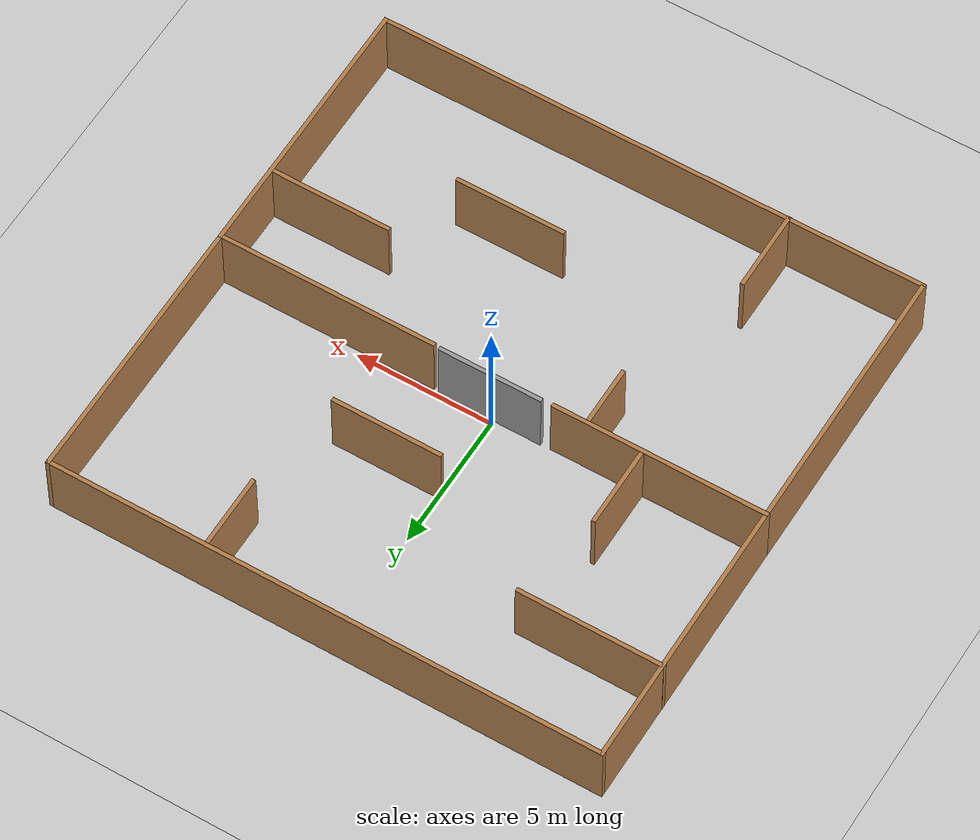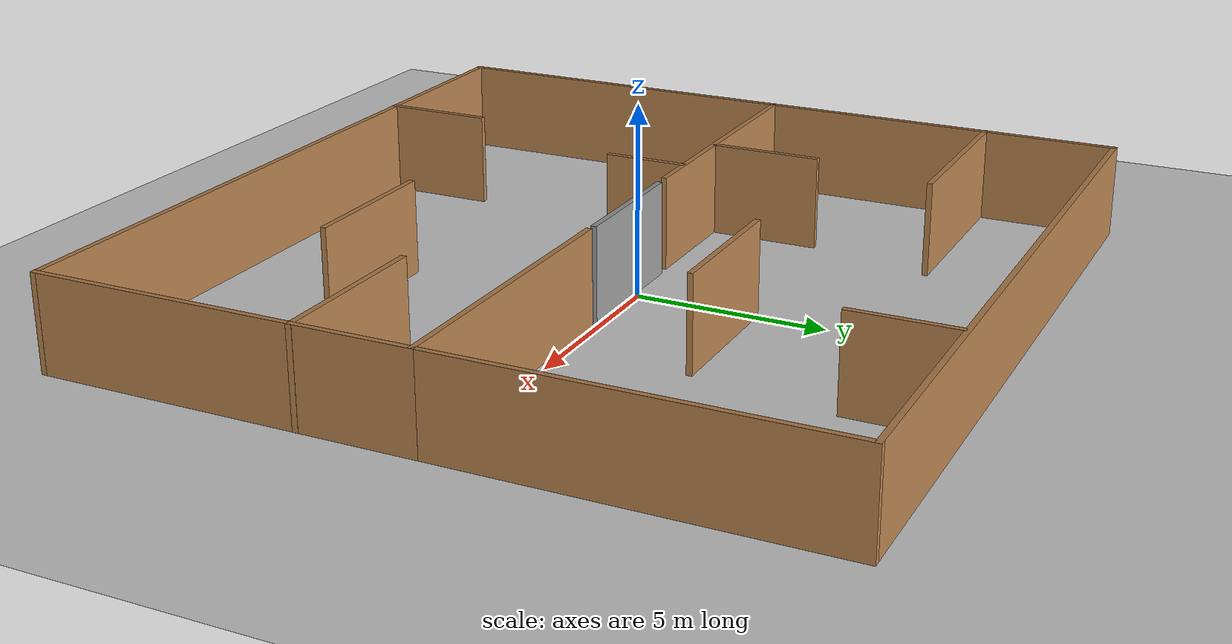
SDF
<sdf version="1.6">
 <world name="default">
  <light name="sun" type="directional">
   <pose>0 0 10 0 -0 0</pose>
   <diffuse>0.8 0.8 0.8 1</diffuse>
   <specular>0.2 0.2 0.2 1</specular>
   <attenuation>
    <range>1000</range>
    <constant>0.9</constant>
    <linear>0.01</linear>
    <quadratic>0.001</quadratic>
   </attenuation>
   <direction>-0.5 0.1 -0.9</direction>
  </light>
  <model name="ground_plane">
   <static>1</static>
   <link name="link">
    <collision name="collision">
     <geometry><plane><normal>0 0 1</normal><size>100 100</size></plane></geometry>
     <surface>
      <contact><collide_bitmask>65535</collide_bitmask></contact>
      <friction><ode><mu>100</mu><mu2>50</mu2></ode></friction>
     </surface>
    </collision>
    <visual name="visual">
     <cast_shadows>0</cast_shadows>
     <geometry><plane><normal>0 0 1</normal><size>100 100</size></plane></geometry>
     <material>
      <script><uri>file://media/materials/scripts/gazebo.material</uri><name>Gazebo/Grey</name></script>
     </material>
    </visual>
   </link>
  </model>
  <gravity>0 0 -9.8</gravity>
  <magnetic_field>6e-06 2.3e-05 -4.2e-05</magnetic_field>
  <atmosphere type="adiabatic"/>
  <physics name="default_physics" default="0" type="ode">
   <max_step_size>0.001</max_step_size>
   <real_time_factor>1</real_time_factor>
   <real_time_update_rate>1000</real_time_update_rate>
  </physics>
  <scene><ambient>0.4 0.4 0.4 1</ambient><background>0.7 0.7 0.7 1</background><shadows>1</shadows></scene>
  <audio><device>default</device></audio>
  <spherical_coordinates>
   <surface_model>EARTH_WGS84</surface_model>
   <latitude_deg>0</latitude_deg>
   <longitude_deg>0</longitude_deg>
   <elevation>0</elevation>
   <heading_deg>0</heading_deg>
  </spherical_coordinates>
  <model name="2rooms">
   <pose>0.20375 -0.24591 0 0 -0 0</pose>
   <link name="Wall_101">
    <collision name="Wall_101_Collision">
     <geometry><box><size>4 0.15 2.5</size></box></geometry>
     <pose>0 0 1.25 0 -0 0</pose>
    </collision>
    <visual name="Wall_101_Visual">
     <pose>0 0 1.25 0 -0 0</pose>
     <geometry><box><size>4 0.15 2.5</size></box></geometry>
     <material>
      <script><uri>file://media/materials/scripts/gazebo.material</uri><name>Gazebo/Wood</name></script>
      <ambient>1 1 1 1</ambient>
     </material>
     <meta><layer>0</layer></meta>
    </visual>
    <pose>1.68226 3.37271 0 0 -0 0</pose>
   </link>
   <link name="Wall_103">
    <collision name="Wall_103_Collision">
     <geometry><box><size>2.75 0.15 2.5</size></box></geometry>
     <pose>0 0 1.25 0 -0 0</pose>
    </collision>
    <visual name="Wall_103_Visual">
     <pose>0 0 1.25 0 -0 0</pose>
     <geometry><box><size>2.75 0.15 2.5</size></box></geometry>
     <material>
      <script><uri>file://media/materials/scripts/gazebo.material</uri><name>Gazebo/Wood</name></script>
      <ambient>1 1 1 1</ambient>
     </material>
     <meta><layer>0</layer></meta>
    </visual>
    <pose>4.17121 8.49301 0 0 -0 -1.5708</pose>
   </link>
   <link name="Wall_105">
    <collision name="Wall_105_Collision">
     <geometry><box><size>5.25 0.15 2.5</size></box></geometry>
     <pose>0 0 1.25 0 -0 0</pose>
    </collision>
    <visual name="Wall_105_Visual">
     <pose>0 0 1.25 0 -0 0</pose>
     <geometry><box><size>5.25 0.15 2.5</size></box></geometry>
     <material>
      <script><uri>file://media/materials/scripts/gazebo.material</uri><name>Gazebo/Wood</name></script>
      <ambient>1 1 1 1</ambient>
     </material>
     <meta><layer>0</layer></meta>
    </visual>
    <pose>-7.38061 6.29415 0 0 -0 0</pose>
   </link>
   <link name="Wall_107">
    <collision name="Wall_107_Collision">
     <geometry><box><size>3 0.15 2.5</size></box></geometry>
     <pose>0 0 1.25 0 -0 0</pose>
    </collision>
    <visual name="Wall_107_Visual">
     <pose>0 0 1.25 0 -0 0</pose>
     <geometry><box><size>3 0.15 2.5</size></box></geometry>
     <material>
      <script><uri>file://media/materials/scripts/gazebo.material</uri><name>Gazebo/Wood</name></script>
      <ambient>1 1 1 1</ambient>
     </material>
     <meta><layer>0</layer></meta>
    </visual>
    <pose>-5.52432 1.50013 0 0 -0 1.5708</pose>
   </link>
   <link name="Wall_110">
    <collision name="Wall_110_Collision">
     <geometry><box><size>7.75 0.15 2.5</size></box></geometry>
     <pose>0 0 1.25 0 -0 0</pose>
    </collision>
    <visual name="Wall_110_Visual">
     <pose>0 0 1.25 0 -0 0</pose>
     <geometry><box><size>7.75 0.15 2.5</size></box></geometry>
     <material>
      <script><uri>file://media/materials/scripts/gazebo.material</uri><name>Gazebo/Wood</name></script>
      <ambient>1 1 1 1</ambient>
     </material>
     <meta><layer>0</layer></meta>
    </visual>
    <pose>-6.12313 0.009005 0 0 -0 0</pose>
   </link>
   <link name="Wall_112">
    <collision name="Wall_112_Collision">
     <geometry><box><size>8 0.15 2.5</size></box></geometry>
     <pose>0 0 1.25 0 -0 0</pose>
    </collision>
    <visual name="Wall_112_Visual">
     <pose>0 0 1.25 0 -0 0</pose>
     <geometry><box><size>8 0.15 2.5</size></box></geometry>
     <material>
      <script><uri>file://media/materials/scripts/gazebo.material</uri><name>Gazebo/Wood</name></script>
      <ambient>1 1 1 1</ambient>
     </material>
     <meta><layer>0</layer></meta>
    </visual>
    <pose>6.00187 0.009005 0 0 -0 3.14159</pose>
   </link>
   <link name="Wall_24">
    <collision name="Wall_24_Collision">
     <geometry><box><size>10 0.15 2.5</size></box></geometry>
     <pose>0 0 1.25 0 -0 0</pose>
    </collision>
    <visual name="Wall_24_Visual">
     <pose>0 0 1.25 0 -0 0</pose>
     <geometry><box><size>10 0.15 2.5</size></box></geometry>
     <material>
      <script><uri>file://media/materials/scripts/gazebo.material</uri><name>Gazebo/Wood</name></script>
      <ambient>1 1 1 1</ambient>
     </material>
     <meta><layer>0</layer></meta>
    </visual>
    <pose>9.92687 4.934 0 0 -0 -1.5708</pose>
   </link>
   <link name="Wall_25">
    <collision name="Wall_25_Collision">
     <geometry><box><size>10 0.15 2.5</size></box></geometry>
     <pose>0 0 1.25 0 -0 0</pose>
    </collision>
    <visual name="Wall_25_Visual">
     <pose>0 0 1.25 0 -0 0</pose>
     <geometry><box><size>10 0.15 2.5</size></box></geometry>
     <material>
      <script><uri>file://media/materials/scripts/gazebo.material</uri><name>Gazebo/Wood</name></script>
      <ambient>1 1 1 1</ambient>
     </material>
     <meta><layer>0</layer></meta>
    </visual>
    <pose>9.92687 -4.91599 0 0 -0 -1.5708</pose>
   </link>
   <link name="Wall_57">
    <collision name="Wall_57_Collision">
     <geometry><box><size>20 0.15 2.5</size></box></geometry>
     <pose>0 0 1.25 0 -0 0</pose>
    </collision>
    <visual name="Wall_57_Visual">
     <pose>0 0 1.25 0 -0 0</pose>
     <geometry><box><size>20 0.15 2.5</size></box></geometry>
     <material>
      <script><uri>file://media/materials/scripts/gazebo.material</uri><name>Gazebo/Wood</name></script>
      <ambient>1 1 1 1</ambient>
     </material>
     <meta><layer>0</layer></meta>
    </visual>
    <pose>0.001869 9.859 0 0 -0 3.14159</pose>
   </link>
   <link name="Wall_58">
    <collision name="Wall_58_Collision">
     <geometry><box><size>10 0.15 2.5</size></box></geometry>
     <pose>0 0 1.25 0 -0 0</pose>
    </collision>
    <visual name="Wall_58_Visual">
     <pose>0 0 1.25 0 -0 0</pose>
     <geometry><box><size>10 0.15 2.5</size></box></geometry>
     <material>
      <script><uri>file://media/materials/scripts/gazebo.material</uri><name>Gazebo/Wood</name></script>
      <ambient>1 1 1 1</ambient>
     </material>
     <meta><layer>0</layer></meta>
    </visual>
    <pose>-9.92313 4.934 0 0 -0 -1.5708</pose>
   </link>
   <link name="Wall_59">
    <collision name="Wall_59_Collision">
     <geometry><box><size>10 0.15 2.5</size></box></geometry>
     <pose>0 0 1.25 0 -0 0</pose>
    </collision>
    <visual name="Wall_59_Visual">
     <pose>0 0 1.25 0 -0 0</pose>
     <geometry><box><size>10 0.15 2.5</size></box></geometry>
     <material>
      <script><uri>file://media/materials/scripts/gazebo.material</uri><name>Gazebo/Wood</name></script>
      <ambient>0.921569 0.807843 0.615686 1</ambient>
     </material>
     <meta><layer>0</layer></meta>
    </visual>
    <pose>-9.92313 -4.91599 0 0 -0 -1.5708</pose>
   </link>
   <link name="Wall_60">
    <collision name="Wall_60_Collision">
     <geometry><box><size>20 0.15 2.5</size></box></geometry>
     <pose>0 0 1.25 0 -0 0</pose>
    </collision>
    <visual name="Wall_60_Visual">
     <pose>0 0 1.25 0 -0 0</pose>
     <geometry><box><size>20 0.15 2.5</size></box></geometry>
     <material>
      <script><uri>file://media/materials/scripts/gazebo.material</uri><name>Gazebo/Wood</name></script>
      <ambient>1 1 1 1</ambient>
     </material>
     <meta><layer>0</layer></meta>
    </visual>
    <pose>0.001869 -9.84099 0 0 -0 0</pose>
   </link>
   <link name="Wall_93">
    <collision name="Wall_93_Collision">
     <geometry><box><size>3 0.15 2.5</size></box></geometry>
     <pose>0 0 1.25 0 -0 0</pose>
    </collision>
    <visual name="Wall_93_Visual">
     <pose>0 0 1.25 0 -0 0</pose>
     <geometry><box><size>3 0.15 2.5</size></box></geometry>
     <material>
      <script><uri>file://media/materials/scripts/gazebo.material</uri><name>Gazebo/Wood</name></script>
      <ambient>1 1 1 1</ambient>
     </material>
     <meta><layer>0</layer></meta>
    </visual>
    <pose>-5.04014 -8.43401 0 0 -0 1.5708</pose>
   </link>
   <link name="Wall_95">
    <collision name="Wall_95_Collision">
     <geometry><box><size>4.5 0.15 2.5</size></box></geometry>
     <pose>0 0 1.25 0 -0 0</pose>
    </collision>
    <visual name="Wall_95_Visual">
     <pose>0 0 1.25 0 -0 0</pose>
     <geometry><box><size>4.5 0.15 2.5</size></box></geometry>
     <material>
      <script><uri>file://media/materials/scripts/gazebo.material</uri><name>Gazebo/Wood</name></script>
      <ambient>1 1 1 1</ambient>
     </material>
     <meta><layer>0</layer></meta>
    </visual>
    <pose>7.75561 -2.96007 0 0 -0 3.14159</pose>
   </link>
   <link name="Wall_97">
    <collision name="Wall_97_Collision">
     <geometry><box><size>4 0.15 2.5</size></box></geometry>
     <pose>0 0 1.25 0 -0 0</pose>
    </collision>
    <visual name="Wall_97_Visual">
     <pose>0 0 1.25 0 -0 0</pose>
     <geometry><box><size>4 0.15 2.5</size></box></geometry>
     <material>
      <script><uri>file://media/materials/scripts/gazebo.material</uri><name>Gazebo/Wood</name></script>
      <ambient>0.921569 0.807843 0.615686 1</ambient>
     </material>
     <meta><layer>0</layer></meta>
    </visual>
    <pose>2.71844 -5.71319 0 0 -0 0</pose>
   </link>
   <link name="Wall_99">
    <collision name="Wall_99_Collision">
     <geometry><box><size>2.25 0.15 2.5</size></box></geometry>
     <pose>0 0 1.25 0 -0 0</pose>
    </collision>
    <visual name="Wall_99_Visual">
     <pose>0 0 1.25 0 -0 0</pose>
     <geometry><box><size>2.25 0.15 2.5</size></box></geometry>
     <material>
      <script><uri>file://media/materials/scripts/gazebo.material</uri><name>Gazebo/Wood</name></script>
      <ambient>1 1 1 1</ambient>
     </material>
     <meta><layer>0</layer></meta>
    </visual>
    <pose>-3.51579 -1.09735 0 0 -0 -1.5708</pose>
   </link>
   <static>1</static>
  </model>
  <model name="Untitled">
   <pose>0.167452 -0.205218 0 0 -0 0</pose>
   <link name="Wall_13">
    <collision name="Wall_13_Collision">
     <geometry><box><size>3.75 0.15 2.5</size></box></geometry>
     <pose>0 0 1.25 0 -0 0</pose>
    </collision>
    <visual name="Wall_13_Visual">
     <pose>0 0 1.25 0 -0 0</pose>
     <geometry><box><size>3.75 0.15 2.5</size></box></geometry>
     <material>
      <script><uri>file://media/materials/scripts/gazebo.material</uri><name>Gazebo/Grey</name></script>
      <ambient>1 1 1 1</ambient>
     </material>
     <meta><layer>0</layer></meta>
    </visual>
    <pose>0 0 0 0 -0 3.14159</pose>
   </link>
   <static>1</static>
  </model>
 </world>
</sdf>
